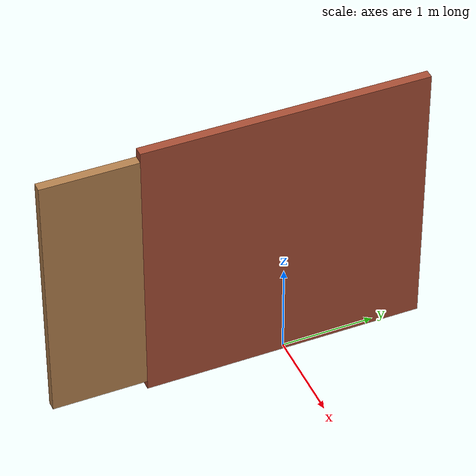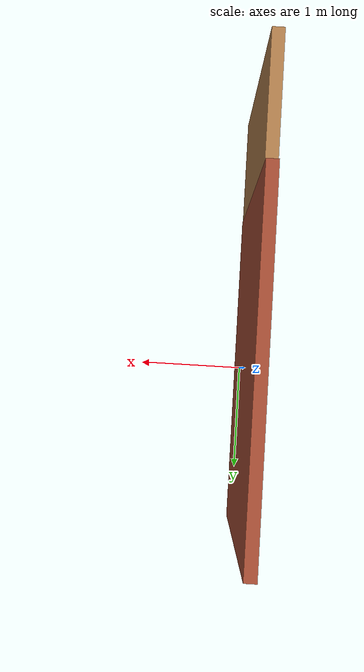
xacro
<?xml version="1.0"?>
<robot name="door" xmlns:xacro="http://www.ros.org/wiki/xacro">

<link name="world"/>
  <joint name="fixed" type="fixed">
    <parent link="world"/>
    <child link="wall"/>
  </joint>

<link name="wall">
    <inertial>
      <mass value="100.0" />
      <inertia  ixx="1.0" ixy="0"  ixz="0"  iyy="1.0"  iyz="0"  izz="1.0" />
    </inertial>
    <visual>
      <origin xyz="0 0 1.5"/>
      <geometry>
        <box size="0.1 3 3" />
      </geometry>
    </visual>
    <collision>
      <origin xyz="0 0 1.5"/>
      <geometry>
        <box size="0.1 3 3" />
      </geometry>
    </collision>
  </link>

  <link name="door">
    <inertial>
      <mass value="1.0" />
      <inertia  ixx="1.0" ixy="0"  ixz="0"  iyy="1.0"  iyz="0"  izz="1.0" />
    </inertial>
    <visual>
      <origin xyz="0 -0.5 0"/>
      <geometry>
        <box size="0.1 1 2.8" />
      </geometry>
    </visual>
    <collision>
      <origin xyz="0 -0.5 0"/>
      <geometry>
        <box size="0.1 1 2.8" />
      </geometry>
    </collision>
  </link>

  <joint name="joint1" type="revolute">
    <limit upper="0" lower="-1.48353" velocity="0.523599" effort="200"/>
    <origin xyz="0 -1.5 1.5" rpy="0 0 0"/>
    <axis xyz="0 0 1" />
    <parent link="wall"/>
    <child link="door"/>
  </joint>

  <gazebo reference="wall">
    <material>Gazebo/Bricks</material>
    <static>1</static>
  </gazebo>

  <gazebo reference="door">
    <material>Gazebo/Wood</material>
    <mu1>1.0</mu1>
    <mu2>1.0</mu2>
    <static>0</static>
  </gazebo>

<!--................. Gazebo plugins....................-->
  <gazebo>
	<plugin name="gazebo_ros_control" filename="libgazebo_ros_control.so">
	    <robotNamespace>/ram</robotNamespace>
	</plugin>
  </gazebo>
</robot>
